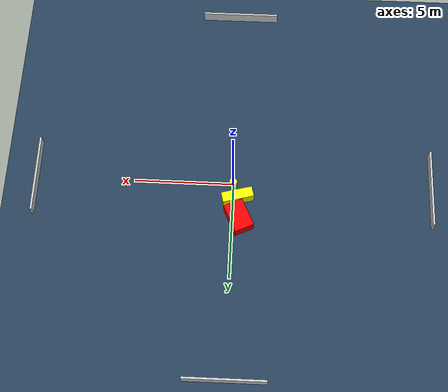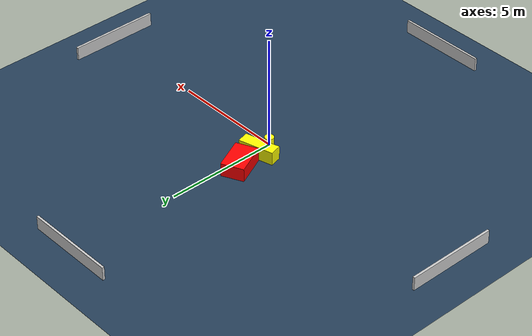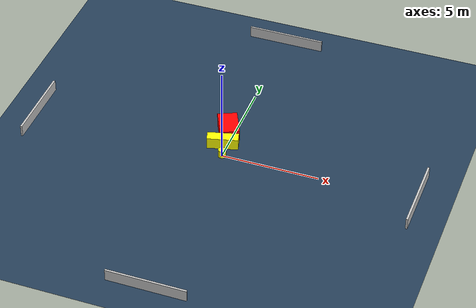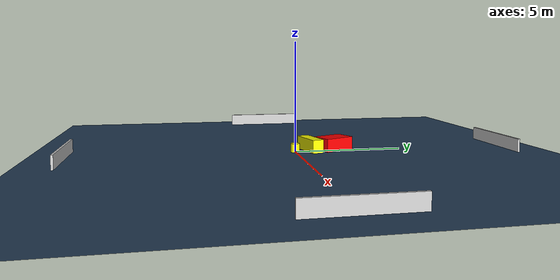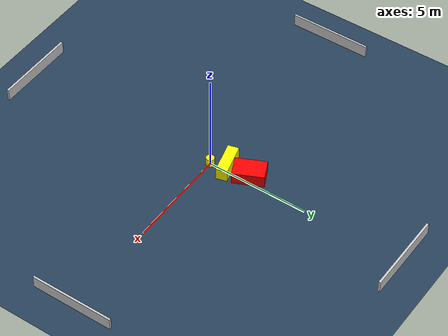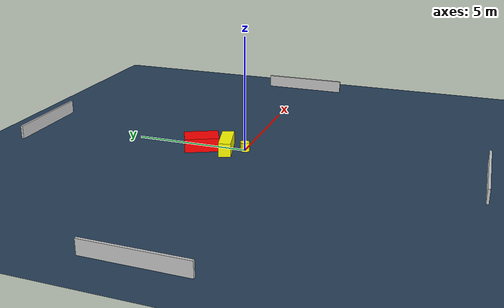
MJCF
<?xml version="1.0" ?>
<mujoco model="generated_environment">
  <option timestep="0.01" integrator="RK4" cone="elliptic"/>
  <default>
    <geom density="1"/>
  </default>
  <asset>
    <texture builtin="gradient" height="3072" name="skybox" rgb1="0.3 0.5 0.7" rgb2="0 0 0" type="skybox" width="512"/>
    <texture builtin="checker" height="300" name="groundplane" rgb1="0.2 0.3 0.4" rgb2="0.1 0.2 0.3" type="2d" width="300"/>
    <material name="groundplane" reflectance="0.2" texrepeat="5 5" texture="groundplane"/>
  </asset>
  <worldbody>
    <light dir="0 0 -1" directional="true" pos="0 0 1.5"/>
    <geom condim="3" friction="0.5 0.005 0.001" material="groundplane" name="floor" pos="0 0 0" size="0 0 0.05" type="plane"/>
    <body name="walls">
      <geom name="wall_1" condim="4" pos="-10.0 0.0 0.3" rgba="0.800000011920929 0.800000011920929 0.800000011920929 1.0" size="0.05 2.0 0.3" type="box"/>
      <geom name="wall_2" condim="4" pos="10.0 0.0 0.3" rgba="0.800000011920929 0.800000011920929 0.800000011920929 1.0" size="0.05 2.0 0.3" type="box"/>
      <geom name="wall_3" condim="4" pos="0.0 -10.0 0.3" rgba="0.800000011920929 0.800000011920929 0.800000011920929 1.0" size="2.0 0.05 0.3" type="box"/>
      <geom name="wall_4" condim="4" pos="0.0 10.0 0.3" rgba="0.800000011920929 0.800000011920929 0.800000011920929 1.0" size="2.0 0.05 0.3" type="box"/>
    </body>
    <body name="robot">
      <joint name="joint_x" type="slide" pos="0 0 0" axis="1 0 0"/>
      <joint name="joint_y" type="slide" pos="0 0 0" axis="0 1 0"/>
      <geom name="robot" type="cylinder" pos="0.0 0.0 0.2" size="0.2 0.2 0.0" mass="5.0" friction="1.0 0.005 0.0001" condim="4" rgba="1.0 1.0 0.0 1.0"/>
    </body>
    <body name="obstacle_1_movable">
      <geom name="obstacle_1_movable" condim="4" pos="-0.2400485713356704 0.7653469964057121 0.3" euler="0 0 284.5522870563583" friction="0.0 0.005 0.001" rgba="1.0 1.0 0.0 1.0" size="0.26584481184685427 0.7905335398996847 0.3" type="box" mass="0.1"/>
      <joint type="free"/>
    </body>
    <body name="obstacle_2_static">
      <geom name="obstacle_2_static" condim="4" pos="-0.341402507937166 1.884904132144872 0.3" euler="0 0 25.17233846506869" friction="0.0 0.005 0.001" rgba="1.0 0.0 0.0 1.0" size="0.5004083865784574 0.7454565444017813 0.3" type="box"/>
    </body>
  </worldbody>
  <actuator>
    <motor name="actuator_x" joint="joint_x" gear="1" ctrlrange="-1 1"/>
    <motor name="actuator_y" joint="joint_y" gear="1" ctrlrange="-1 1"/>
  </actuator>
</mujoco>
